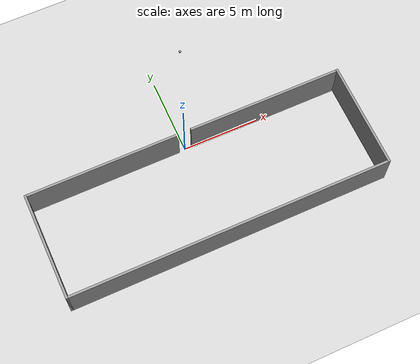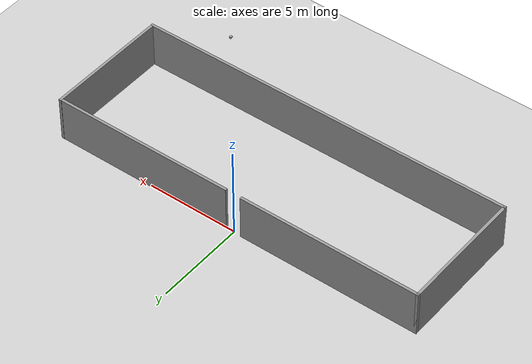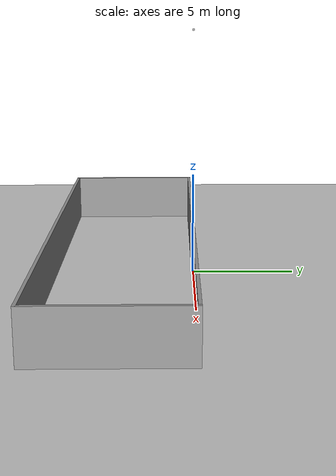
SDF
<sdf version="1.6">
 <world name="default">
  <light name="sun" type="directional">
   <pose>0 0 10 0 -0 0</pose>
   <diffuse>0.8 0.8 0.8 1</diffuse>
   <specular>0.2 0.2 0.2 1</specular>
   <attenuation>
    <range>1000</range>
    <constant>0.9</constant>
    <linear>0.01</linear>
    <quadratic>0.001</quadratic>
   </attenuation>
   <direction>-0.5 0.1 -0.9</direction>
  </light>
  <model name="ground_plane">
   <static>1</static>
   <link name="link">
    <collision name="collision">
     <geometry><plane><normal>0 0 1</normal><size>100 100</size></plane></geometry>
     <surface><friction><ode><mu>100</mu><mu2>50</mu2></ode></friction></surface>
    </collision>
    <visual name="visual">
     <cast_shadows>0</cast_shadows>
     <geometry><plane><normal>0 0 1</normal><size>100 100</size></plane></geometry>
     <material>
      <script><uri>file://media/materials/scripts/gazebo.material</uri><name>Gazebo/Grey</name></script>
     </material>
    </visual>
   </link>
  </model>
  <gravity>0 0 -9.8</gravity>
  <magnetic_field>6e-06 2.3e-05 -4.2e-05</magnetic_field>
  <atmosphere type="adiabatic"/>
  <physics name="default_physics" default="0" type="ode">
   <max_step_size>0.001</max_step_size>
   <real_time_factor>1</real_time_factor>
   <real_time_update_rate>1000</real_time_update_rate>
  </physics>
  <scene><ambient>0.4 0.4 0.4 1</ambient><background>0.7 0.7 0.7 1</background><shadows>1</shadows></scene>
  <spherical_coordinates>
   <surface_model>EARTH_WGS84</surface_model>
   <latitude_deg>0</latitude_deg>
   <longitude_deg>0</longitude_deg>
   <elevation>0</elevation>
   <heading_deg>0</heading_deg>
  </spherical_coordinates>
  <model name="85cm_split">
   <pose>0.090193 -3.43017 0 0 -0 0</pose>
   <link name="Wall_0">
    <collision name="Wall_0_Collision">
     <geometry><box><size>10 0.15 2.5</size></box></geometry>
     <pose>0 0 1.25 0 -0 0</pose>
    </collision>
    <visual name="Wall_0_Visual">
     <pose>0 0 1.25 0 -0 0</pose>
     <geometry><box><size>10 0.15 2.5</size></box></geometry>
     <material>
      <script><uri>file://media/materials/scripts/gazebo.material</uri><name>Gazebo/Grey</name></script>
      <ambient>1 1 1 1</ambient>
     </material>
     <meta><layer>0</layer></meta>
    </visual>
    <pose>-5.5 3.425 0 0 -0 0</pose>
   </link>
   <link name="Wall_2">
    <collision name="Wall_2_Collision">
     <geometry><box><size>10 0.15 2.5</size></box></geometry>
     <pose>0 0 1.25 0 -0 0</pose>
    </collision>
    <visual name="Wall_2_Visual">
     <pose>0 0 1.25 0 -0 0</pose>
     <geometry><box><size>10 0.15 2.5</size></box></geometry>
     <material>
      <script><uri>file://media/materials/scripts/gazebo.material</uri><name>Gazebo/Grey</name></script>
      <ambient>1 1 1 1</ambient>
     </material>
     <meta><layer>0</layer></meta>
    </visual>
    <pose>5.34158 3.42161 0 0 -0 0</pose>
   </link>
   <link name="Wall_4">
    <collision name="Wall_4_Collision">
     <geometry><box><size>7 0.15 2.5</size></box></geometry>
     <pose>0 0 1.25 0 -0 0</pose>
    </collision>
    <visual name="Wall_4_Visual">
     <pose>0 0 1.25 0 -0 0</pose>
     <geometry><box><size>7 0.15 2.5</size></box></geometry>
     <material>
      <script><uri>file://media/materials/scripts/gazebo.material</uri><name>Gazebo/Grey</name></script>
      <ambient>1 1 1 1</ambient>
     </material>
     <meta><layer>0</layer></meta>
    </visual>
    <pose>-10.425 0 0 0 -0 -1.5708</pose>
   </link>
   <link name="Wall_5">
    <collision name="Wall_5_Collision">
     <geometry><box><size>21 0.15 2.5</size></box></geometry>
     <pose>0 0 1.25 0 -0 0</pose>
    </collision>
    <visual name="Wall_5_Visual">
     <pose>0 0 1.25 0 -0 0</pose>
     <geometry><box><size>21 0.15 2.5</size></box></geometry>
     <material>
      <script><uri>file://media/materials/scripts/gazebo.material</uri><name>Gazebo/Grey</name></script>
      <ambient>1 1 1 1</ambient>
     </material>
     <meta><layer>0</layer></meta>
    </visual>
    <pose>0 -3.425 0 0 -0 0</pose>
   </link>
   <link name="Wall_6">
    <collision name="Wall_6_Collision">
     <geometry><box><size>7 0.15 2.5</size></box></geometry>
     <pose>0 0 1.25 0 -0 0</pose>
    </collision>
    <visual name="Wall_6_Visual">
     <pose>0 0 1.25 0 -0 0</pose>
     <geometry><box><size>7 0.15 2.5</size></box></geometry>
     <material>
      <script><uri>file://media/materials/scripts/gazebo.material</uri><name>Gazebo/Grey</name></script>
      <ambient>1 1 1 1</ambient>
     </material>
     <meta><layer>0</layer></meta>
    </visual>
    <pose>10.425 0 0 0 -0 1.5708</pose>
   </link>
   <static>1</static>
  </model>
  <model name="camera">
   <static>true</static>
   <pose>0 0 12 0 1.571 0</pose>
   <link name="link">
    <visual name="visual"><geometry><box><size>0.1 0.1 0.1</size></box></geometry></visual>
    <sensor name="my_camera" type="camera">
     <camera>
      <save enabled="true"><path>/tmp/camera_save_tutorial</path></save>
      <horizontal_fov>1.047</horizontal_fov>
      <image><width>1080</width><height>1080</height></image>
      <clip><near>0.1</near><far>100</far></clip>
     </camera>
     <always_on>1</always_on>
     <update_rate>30</update_rate>
    </sensor>
   </link>
  </model>
 </world>
</sdf>
